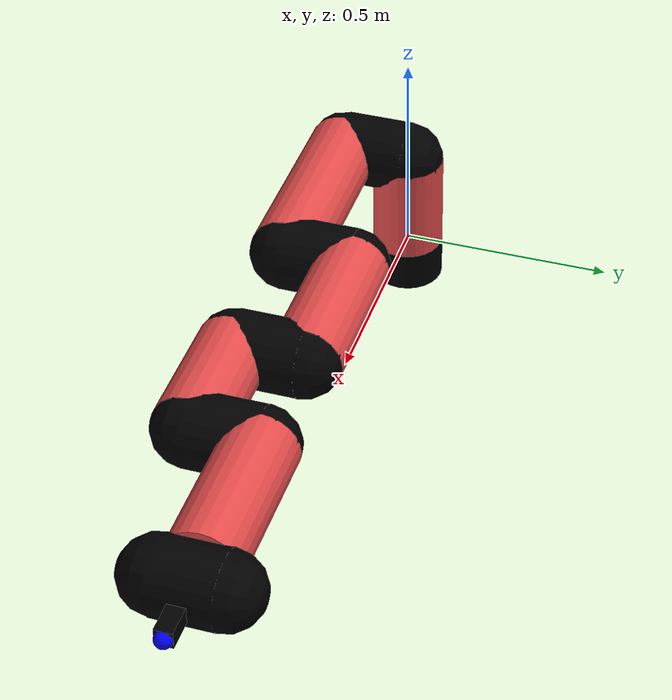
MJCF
<mujoco model="manipulator">
		<compiler angle="degree" coordinate="local" inertiafromgeom="auto" meshdir="meshes/"/>
		<option gravity="0 0 0" integrator="RK4" iterations="30" timestep="0.01"/>

		<default>
		<joint armature="1" limited="true" stiffness="10" damping="15" frictionloss="5.0"/>
		<geom conaffinity="1" condim="3" contype="1" friction=".5 .1 .1" margin="0.002"/>
		<motor ctrllimited="true"/>
		<position ctrllimited="true"/>
		</default>

		<asset>
		<texture builtin="gradient" height="100" rgb1="1.0 1.0 1.0" rgb2="1.0 1.0 1.0" type="skybox" width="100"/>
		<texture builtin="flat" height="32" name="arm_tex" rgb1="0.9 0.3 0.3" type="2d" width="32"/>
		<texture builtin="flat" height="32" name="gripper_tex" rgb1="0.0 0.0 0.0" type="cube" width="32"/>

		<material name="arm_mat" shininess="0.1" specular="0.1" texture="arm_tex"/>
		<material name="gripper_mat" shininess="1" specular="1" texture="gripper_tex"/>
		</asset>

		<worldbody>
		<light cutoff="45" diffuse=".8 .8 .8" dir="0 0.16 -1" directional="false" name="light" pos="0 -2.0 8.0" specular="0.3 0.3 0.3"/>

		<body name="base_link" pos="0 0 -0.1">
		<geom fromto="0 0 0 0 0 0.1" material="arm_mat" name="base_link" rgba="0.0 0.0 0.0 1" size="0.085" type="cylinder"/>
		</body>

		<body name="l1" pos="0 0 0">
<geom fromto="0 0 0 0 0 0.24" material="arm_mat" name="l1" rgba="0.9 0.3 0.3 1" size="0.085" type="cylinder"/>
<geom fromto="0 0 0.24 0 -0.16 0.24" material="arm_mat" name="l1_ex" rgba="0.0 0.0 0.0 1" size="0.085" type="capsule"/>
<joint axis="0 0 1" name="j1" pos="0 0 0" range="-90 90" damping="32.86" frictionloss="12.3"/>

<body name="l2" pos="0 -0.16 0.24">
<geom fromto="0 0 0 0.43 0 0" material="arm_mat" name="l2" rgba="0.9 0.3 0.3 1" size="0.085" type="cylinder"/>
<geom fromto="0.43 0 0 0.43 0.16 0" material="arm_mat" name="l2_ex" rgba="0.0 0.0 0.0 1" size="0.085" type="capsule"/>
<joint axis="0.0 1.0 0.0" name="j2" pos="0 0 0" range="-90 60" damping="36.94" frictionloss="11.0"/>

<body name="l3" pos="0.43 0.16 0">
<geom fromto="0 0 0 0.34 0 0" material="arm_mat" name="l3" rgba="0.9 0.3 0.3 1" size="0.085" type="cylinder"/>
<geom fromto="0.34 0 0 0.34 -0.16 0" material="arm_mat" name="l3_ex" rgba="0.0 0.0 0.0 1" size="0.085" type="capsule"/>
<joint axis="0.0 1.0 0.0" name="j3" pos="0 0 0" range="-30 60" damping="30.06" frictionloss="10.37"/>

<body name="l4" pos="0.34 -0.16 0">
<geom fromto="0 0 0 0.27 0 0" material="arm_mat" name="l4" rgba="0.9 0.3 0.3 1" size="0.085" type="cylinder"/>
<geom fromto="0.27 0 0 0.27 0.16 0" material="arm_mat" name="l4_ex" rgba="0.0 0.0 0.0 1" size="0.085" type="capsule"/>
<joint axis="0.0 1.0 0.0" name="j4" pos="0 0 0" range="-30 60" damping="28.81" frictionloss="10.13"/>

<body name="l5" pos="0.27 0.16 0">
<geom fromto="0 0 0 0.35 0 0" material="arm_mat" name="l5" rgba="0.9 0.3 0.3 1" size="0.085" type="cylinder"/>
<joint axis="0.0 1.0 0.0" name="j5" pos="0 0 0" range="-30 60" damping="23.61" frictionloss="8.49"/>

<body name="gripper" pos="0.35 0 0">
<geom fromto="0.05 -0.07 0 0.05 0.07 0" material="gripper_mat" name="gripper" rgba="0.0 0.0 0.0 1" size="0.085" type="capsule"/><joint axis="1 0 0" name="j6" pos="0 0 0" range="-90 90" damping="15" frictionloss="5.0"/><body name="finger" pos="0.1 0 0">
<geom fromto="0 0.0 0 0.1 0.0 0" material="gripper_mat" name="finger" rgba="0.0 0.0 0.0 1" size="0.020 0.06 0.06" type="box"/>
</body>
<site name="current" pos="0.2 0. 0.0" rgba="0. 0. 1.0 1" size="0.02" type="sphere"/>
</body>
</body>
</body>
</body>
</body>
</body>
</worldbody>
<actuator>
<motor ctrllimited="true" ctrlrange="-1.0 1.0" joint="j1" gear="84.3"/>
<motor ctrllimited="true" ctrlrange="-1.0 1.0" joint="j2" gear="67.32"/>
<motor ctrllimited="true" ctrlrange="-1.0 1.0" joint="j3" gear="74.63"/>
<motor ctrllimited="true" ctrlrange="-1.0 1.0" joint="j4" gear="78.46"/>
<motor ctrllimited="true" ctrlrange="-1.0 1.0" joint="j5" gear="97.5"/>
<motor ctrllimited="true" ctrlrange="-1.0 1.0" joint="j6" gear="80"/>
</actuator>
</mujoco>
